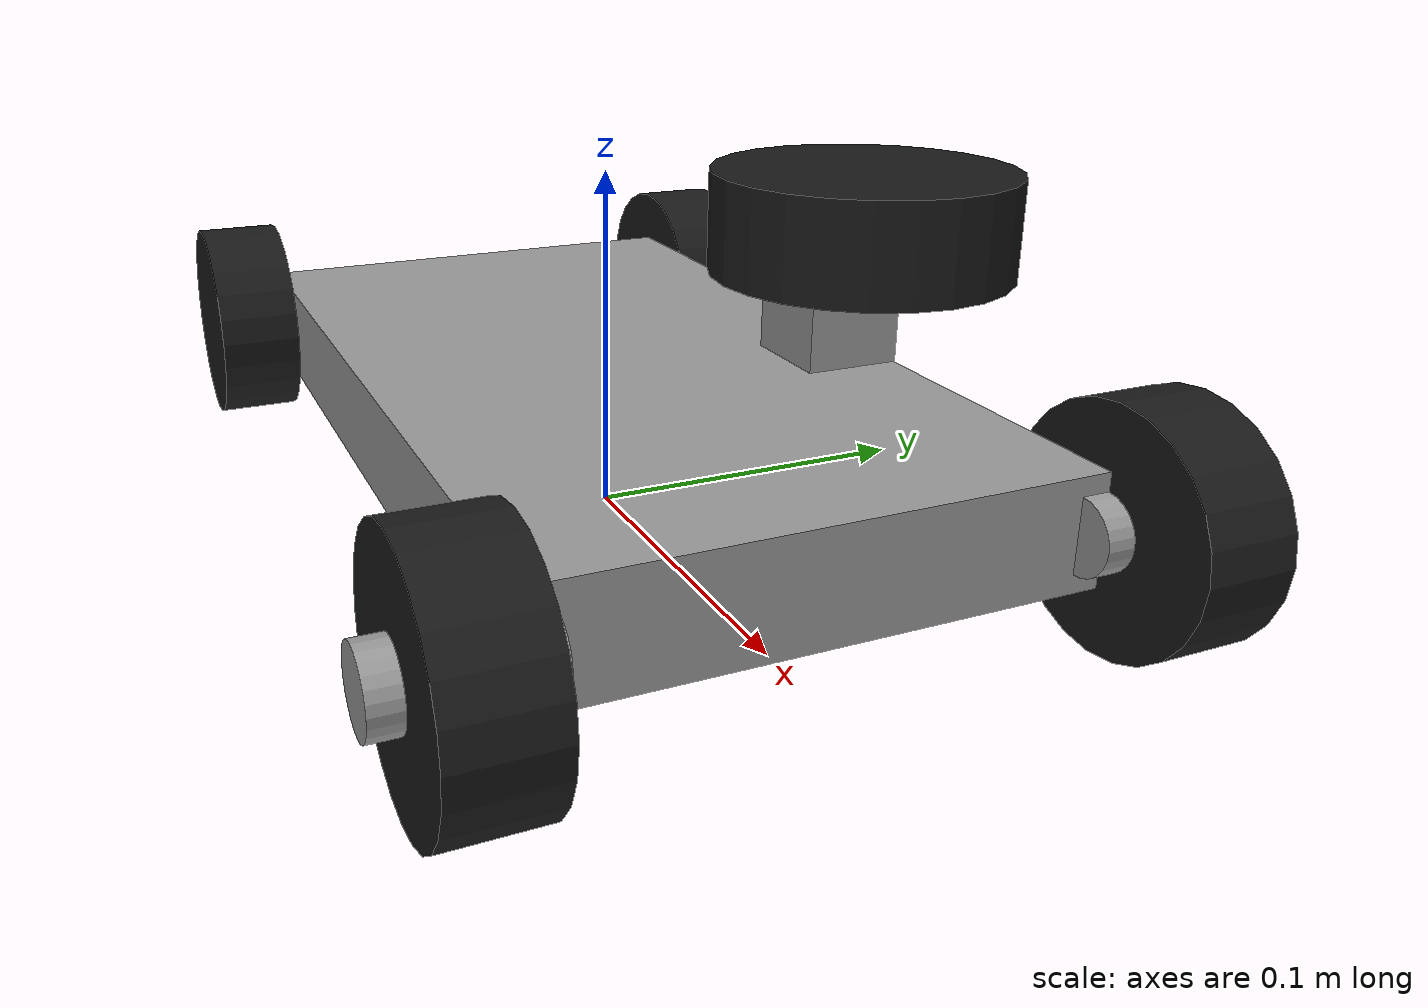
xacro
<?xml version="1.0"?>
<robot xmlns:xacro="http://www.ros.org/wiki/xacro" name="smart_car">

  <!-- ======================== Parameters ======================== -->
  <xacro:property name="wheel_diameter" value="0.064"/>
  <xacro:property name="wheel_radius"   value="${wheel_diameter/2.0}"/>
  <xacro:property name="wheel_width"    value="0.025"/>

  <xacro:property name="wheelbase_len"  value="0.257"/>
  <xacro:property name="wheelbase_wid"  value="0.17"/>

  <!-- simple chassis block -->
  <xacro:property name="chassis_len" value="${wheelbase_len}"/>
  <xacro:property name="chassis_wid" value="${wheelbase_wid - wheel_width}"/>
  <xacro:property name="chassis_hei" value="0.03"/>

  <!-- masses (assumed) -->
  <xacro:property name="m_chassis" value="2.0"/>
  <xacro:property name="m_wheel"   value="0.3"/>

  <!-- ======================== Materials ========================= -->
  <material name="gray">
    <color rgba="0.6 0.6 0.6 1"/>
  </material>

  <material name="black">
    <color rgba="0.1 0.1 0.1 1"/>
  </material>

  <!-- ===================== Inertia helpers ====================== -->
  <xacro:macro name="inertial_box" params="mass x y z">
    <inertial>
      <mass value="${mass}"/>
      <origin xyz="0 0 0" rpy="0 0 0"/>
      <inertia
        ixx="${mass*((y*y+z*z)/12.0)}"
        ixy="0"
        ixz="0"
        iyy="${mass*((x*x+z*z)/12.0)}"
        iyz="0"
        izz="${mass*((x*x+y*y)/12.0)}"/>
    </inertial>
  </xacro:macro>

  <!-- solid cylinder, axis = z -->
  <xacro:macro name="inertial_cyl_z" params="mass r h">
    <inertial>
      <mass value="${mass}"/>
      <origin xyz="0 0 0" rpy="0 0 0"/>
      <inertia
        ixx="${mass*((3*r*r+h*h)/12.0)}"
        ixy="0"
        ixz="0"
        iyy="${mass*((3*r*r+h*h)/12.0)}"
        iyz="0"
        izz="${mass*(r*r/2.0)}"/>
    </inertial>
  </xacro:macro>

  <!-- ======================== Base links ======================== -->
  <link name="base_footprint"/>

  <joint name="base_footprint_to_base_link" type="fixed">
    <origin xyz="0 0 ${wheel_radius}" rpy="0 0 0"/>
    <parent link="base_footprint"/>
    <child  link="base_link"/>
  </joint>

  <link name="base_link"/>

  <link name="chassis_link">
    <visual>
      <geometry>
        <box size="${chassis_len} ${chassis_wid} ${chassis_hei}"/>
      </geometry>
      <material name="gray"/>
    </visual>
    <collision>
      <geometry>
        <box size="${chassis_len} ${chassis_wid} ${chassis_hei}"/>
      </geometry>
    </collision>
    <xacro:inertial_box mass="${m_chassis}"
                        x="${chassis_len}"
                        y="${chassis_wid}"
                        z="${chassis_hei}"/>
  </link>

  <joint name="chassis_fixed" type="fixed">
    <origin xyz="0 0 0" rpy="0 0 0"/>
    <parent link="base_link"/>
    <child  link="chassis_link"/>
  </joint>

  <!-- ======================= Wheel macros ======================= -->
  <!-- front: steer joint (about z) → wheel joint (about y) -->
  <xacro:macro
      name="steered_wheel"
      params="x y steer_joint_name wheel_joint_name steer_link_name wheel_link_name">

    <link name="${steer_link_name}">
      <visual>
        <geometry>
          <cylinder radius="0.01" length="0.04"/>
        </geometry>
        <origin rpy="1.5708 0 0"/>
        <material name="gray"/>
      </visual>
      <collision>
        <geometry>
          <cylinder radius="0.01" length="0.04"/>
        </geometry>
        <origin rpy="1.5708 0 0"/>
      </collision>
      <xacro:inertial_cyl_z mass="0.05" r="0.01" h="0.04"/>
    </link>

    <joint name="${steer_joint_name}" type="continuous">
      <parent link="chassis_link"/>
      <child  link="${steer_link_name}"/>
      <origin xyz="${x} ${y} 0"/>
      <axis xyz="0 0 1"/>
    </joint>

    <link name="${wheel_link_name}">
      <visual>
        <geometry>
          <cylinder radius="${wheel_radius}" length="${wheel_width}"/>
        </geometry>
        <origin rpy="1.5708 0 0"/>
        <material name="black"/>
      </visual>
      <collision>
        <geometry>
          <cylinder radius="${wheel_radius}" length="${wheel_width}"/>
        </geometry>
        <origin rpy="1.5708 0 0"/>
      </collision>
      <xacro:inertial_cyl_z mass="${m_wheel}" r="${wheel_radius}" h="${wheel_width}"/>
    </link>

    <joint name="${wheel_joint_name}" type="continuous">
      <parent link="${steer_link_name}"/>
      <child  link="${wheel_link_name}"/>
      <axis xyz="0 1 0"/>
    </joint>
  </xacro:macro>

  <!-- rear: only wheel joint (about y) -->
  <xacro:macro name="fixed_wheel" params="x y joint_name link_name">
    <link name="${link_name}">
      <visual>
        <geometry>
          <cylinder radius="${wheel_radius}" length="${wheel_width}"/>
        </geometry>
        <origin rpy="1.5708 0 0"/>
        <material name="black"/>
      </visual>
      <collision>
        <geometry>
          <cylinder radius="${wheel_radius}" length="${wheel_width}"/>
        </geometry>
        <origin rpy="1.5708 0 0"/>
      </collision>
      <xacro:inertial_cyl_z mass="${m_wheel}" r="${wheel_radius}" h="${wheel_width}"/>
    </link>

    <joint name="${joint_name}" type="continuous">
      <parent link="chassis_link"/>
      <child  link="${link_name}"/>
      <origin xyz="${x} ${y} 0"/>
      <axis xyz="0 1 0"/>
    </joint>
  </xacro:macro>

  <!-- ===================== Wheel positions ====================== -->
  <xacro:property name="x_front" value="${ wheelbase_len/2.0 }"/>
  <xacro:property name="x_back"  value="${-wheelbase_len/2.0 }"/>
  <xacro:property name="y_left"  value="${ wheelbase_wid/2.0 }"/>
  <xacro:property name="y_right" value="${-wheelbase_wid/2.0 }"/>

  <!-- ===================== Instantiate wheels =================== -->
  <!-- rear -->
  <xacro:fixed_wheel x="${x_back}"  y="${y_left}"
                     joint_name="back_left_wheel_joint"
                     link_name="back_left_wheel_link"/>

  <xacro:fixed_wheel x="${x_back}"  y="${y_right}"
                     joint_name="back_right_wheel_joint"
                     link_name="back_right_wheel_link"/>

  <!-- front -->
  <xacro:steered_wheel x="${x_front}" y="${y_left}"
                       steer_joint_name="front_left_wheel_steer_joint"
                       wheel_joint_name="front_left_wheel_joint"
                       steer_link_name="front_left_steer_link"
                       wheel_link_name="front_left_wheel_link"/>

  <xacro:steered_wheel x="${x_front}" y="${y_right}"
                       steer_joint_name="front_right_wheel_steer_joint"
                       wheel_joint_name="front_right_wheel_joint"
                       steer_link_name="front_right_steer_link"
                       wheel_link_name="front_right_wheel_link"/>

  <!-- =========================== IMU ============================ -->
  <!-- IMU at robot center: midpoint between axles (x=0), centered in y and at chassis_link origin in z -->
  <link name="imu_link">
    <visual>
      <geometry>
        <box size="0.02 0.02 0.02"/>
      </geometry>
      <origin xyz="0.1185 0 0.06" rpy="0 0 0"/>
      <material name="gray"/>
    </visual>
    <collision>
      <geometry>
        <box size="0.02 0.02 0.02"/>
      </geometry>
      <origin xyz="0.1185 0 0.06" rpy="0 0 0"/>
    </collision>
    <xacro:inertial_box mass="0.01" x="0.02" y="0.02" z="0.01"/>
  </link>

  <joint name="imu_fixed_joint" type="fixed">
    <origin xyz="0 0 0" rpy="0 0 0"/>
    <parent link="chassis_link"/>
    <child  link="imu_link"/>
  </joint>

  <!-- Gazebo: IMU sensor publishing on /imu_data using gazebo_ros_imu_sensor -->
  <gazebo reference="imu_link">
    <sensor name="imu_sensor" type="imu">
      <always_on>true</always_on>
      <update_rate>100</update_rate>
      <visualize>false</visualize>
      <plugin name="imu_plugin" filename="libgazebo_ros_imu_sensor.so">
        <ros>
          <namespace>/</namespace>
          <!-- Remap default topic to /imu_data -->
          <remapping>~/out:=/imu_data</remapping>
        </ros>
        <initial_orientation_as_reference>false</initial_orientation_as_reference>
      </plugin>
    </sensor>
  </gazebo>

  <!-- =========================== LIDAR =========================== -->
  <!-- LIDAR link: mounted at the front (x = x_front) with slight elevation, frame name sllidar_base_link -->
  <link name="sllidar_base_link">
    <visual>
      <!-- simple puck representation -->
      <geometry>
        <cylinder radius="0.03" length="0.02"/>
      </geometry>
      <!-- point the cylinder’s axis along +Z; place at front, slight height -->
      <origin xyz="${x_front} 0 0.08" rpy="0 0 0"/>
      <material name="black"/>
    </visual>
    <collision>
      <geometry>
        <cylinder radius="0.03" length="0.02"/>
      </geometry>
      <origin xyz="${x_front} 0 0.08" rpy="0 0 0"/>
    </collision>
    <xacro:inertial_cyl_z mass="0.15" r="0.03" h="0.02"/>
  </link>

  <!-- Fix the LIDAR frame to base_link (requirement: sensor is linked to base_link) -->
  <joint name="sllidar_mount_joint" type="fixed">
    <origin xyz="0 0 0" rpy="0 0 0"/>
    <parent link="base_link"/>
    <child  link="sllidar_base_link"/>
  </joint>

  <!-- Gazebo: 2D LIDAR using gazebo_ros_ray_sensor, publishing LaserScan on /scan -->
  <gazebo reference="sllidar_base_link">
    <sensor name="front_laser" type="ray">
      <always_on>true</always_on>
      <update_rate>15</update_rate>
      <visualize>true</visualize>

      <ray>
        <scan>
          <horizontal>
            <!-- 270° field of view: -135° .. +135° -->
            <samples>720</samples>
            <resolution>1</resolution>
            <min_angle>-2.35619</min_angle>
            <max_angle>2.35619</max_angle>
          </horizontal>
        </scan>
        <range>
          <min>0.12</min>
          <max>12.0</max>
          <resolution>0.01</resolution>
        </range>
        <!-- modest gaussian noise -->
        <noise type="gaussian">
          <mean>0.0</mean>
          <stddev>0.01</stddev>
        </noise>
      </ray>

      <plugin name="gazebo_ros_ray_sensor" filename="libgazebo_ros_ray_sensor.so">
        <ros>
          <namespace>/</namespace>
          <!-- Publish LaserScan on /scan -->
          <remapping>~/out:=/scan</remapping>
        </ros>
        <!-- ROS 2 message type -->
        <output_type>sensor_msgs/msg/LaserScan</output_type>
        <!-- Frame to stamp in messages -->
        <frame_name>sllidar_base_link</frame_name>
      </plugin>
    </sensor>
  </gazebo>

</robot>
